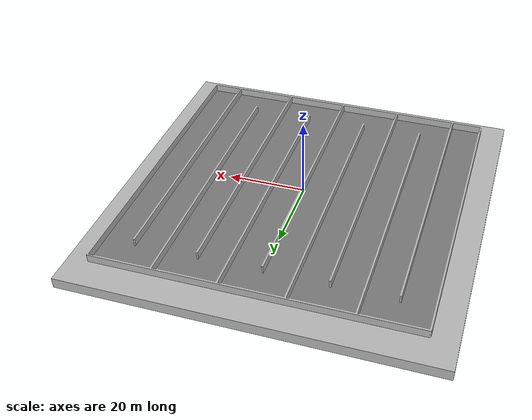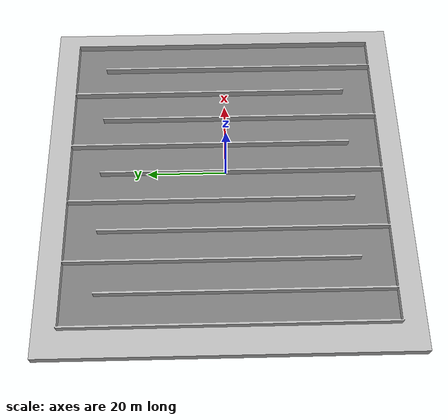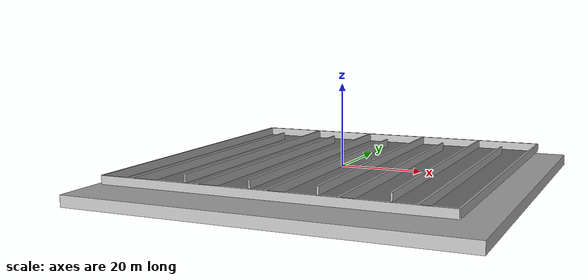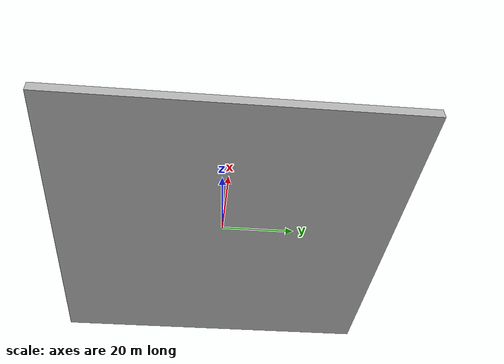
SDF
<?xml version="1.0" ?>
<sdf version="1.2">
  <model name="zigzag">
    <static>true</static>
    <pose>0 0 0 0 0 0</pose>
    <link name="walls">
      <collision name="collision">
        <geometry>
          <mesh>
            <uri>model://zigzag/zigzag.dae</uri>
          </mesh>
        </geometry>
      </collision>
      <visual name="visual">
        <geometry>
          <mesh>
            <uri>model://zigzag/zigzag.dae</uri>
          </mesh>
        </geometry>
        <cast_shadows>false</cast_shadows>
      </visual>
    </link>
  </model>
</sdf>
